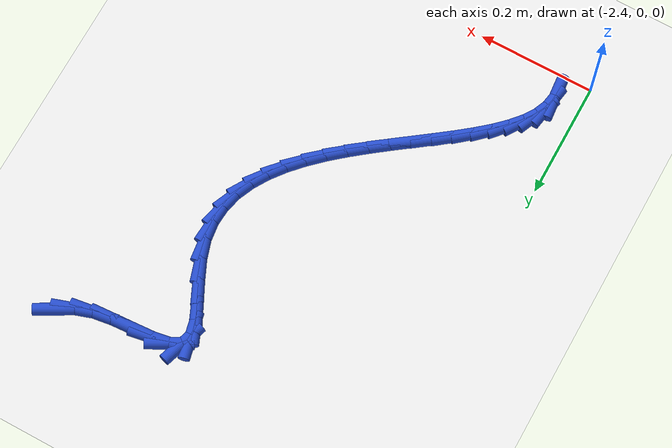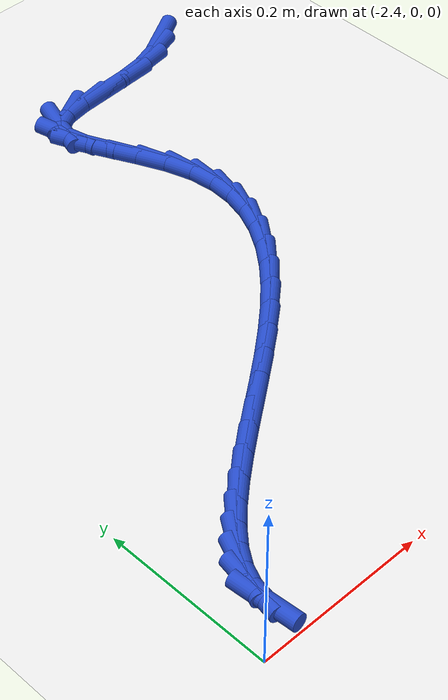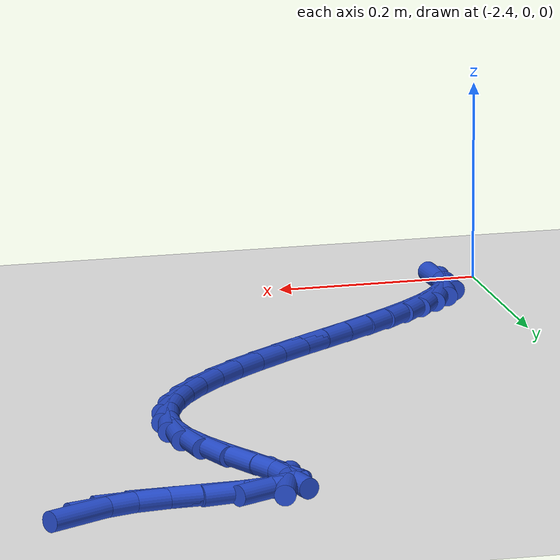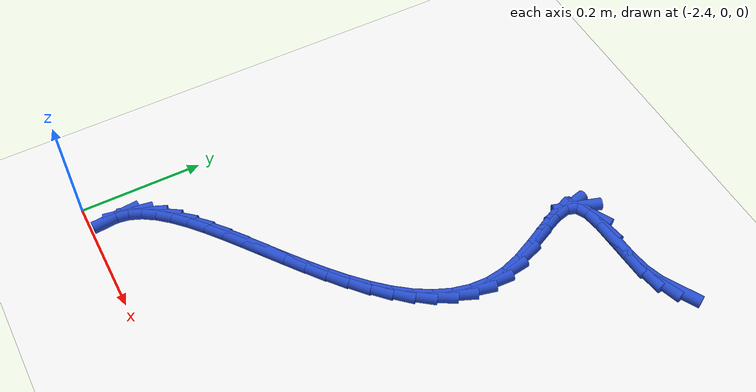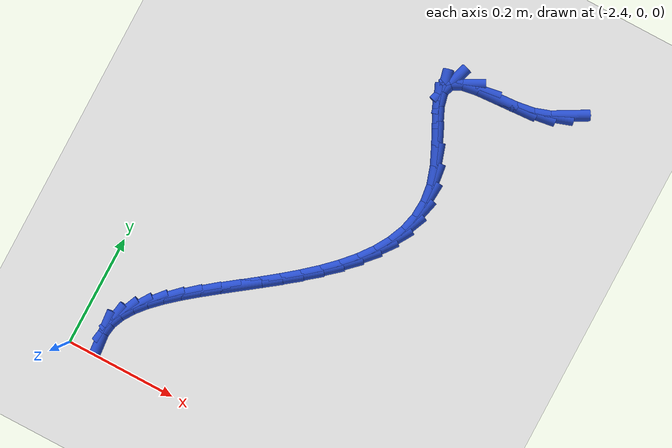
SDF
<sdf version="1.6">
 <world name="default">
  <model name="ground_plane">
   <static>1</static>
   <link name="link">
    <collision name="collision">
     <geometry><plane><normal>0 0 1</normal><size>100 100</size></plane></geometry>
     <surface><friction><ode><mu>100</mu><mu2>50</mu2></ode></friction></surface>
    </collision>
    <visual name="visual">
     <cast_shadows>0</cast_shadows>
     <geometry><plane><normal>0 0 1</normal><size>100 100</size></plane></geometry>
     <material>
      <script><uri>file://media/materials/scripts/gazebo.material</uri><name>Gazebo/WhiteGlow</name></script>
     </material>
    </visual>
   </link>
  </model>
  <model name="line">
   <link name="link_107">
    <pose>-1.8292656620702075 0.7436019253719346 0.01 0 1.57 0.5100071054248744</pose>
    <collision name="collision">
     <geometry><cylinder><radius>0.01</radius><length>0.08</length></cylinder></geometry>
    </collision>
    <visual name="visual">
     <material>
      <script><name>Gazebo/Blue</name><uri>file://media/materials/scripts/gazebo.material</uri></script>
     </material>
     <geometry><cylinder><radius>0.01</radius><length>0.08</length></cylinder></geometry>
    </visual>
   </link>
   <link name="link_108">
    <pose>-1.8538294652595877 0.729861718822115 0.01 0 1.57 0.3205590414442198</pose>
    <collision name="collision">
     <geometry><cylinder><radius>0.01</radius><length>0.08</length></cylinder></geometry>
    </collision>
    <visual name="visual">
     <material>
      <script><name>Gazebo/Blue</name><uri>file://media/materials/scripts/gazebo.material</uri></script>
     </material>
     <geometry><cylinder><radius>0.01</radius><length>0.08</length></cylinder></geometry>
    </visual>
   </link>
   <link name="link_109">
    <pose>-1.881981473962368 0.7205149716785866 0.01 0 1.57 0.14475911002500272</pose>
    <collision name="collision">
     <geometry><cylinder><radius>0.01</radius><length>0.08</length></cylinder></geometry>
    </collision>
    <visual name="visual">
     <material>
      <script><name>Gazebo/Blue</name><uri>file://media/materials/scripts/gazebo.material</uri></script>
     </material>
     <geometry><cylinder><radius>0.01</radius><length>0.08</length></cylinder></geometry>
    </visual>
   </link>
   <link name="link_110">
    <pose>-1.9150270019812357 0.715697633924294 0.01 0 1.57 0.06083944651270771</pose>
    <collision name="collision">
     <geometry><cylinder><radius>0.01</radius><length>0.08</length></cylinder></geometry>
    </collision>
    <visual name="visual">
     <material>
      <script><name>Gazebo/Blue</name><uri>file://media/materials/scripts/gazebo.material</uri></script>
     </material>
     <geometry><cylinder><radius>0.01</radius><length>0.08</length></cylinder></geometry>
    </visual>
   </link>
   <link name="link_111">
    <pose>-1.950398818764289 0.7135429730647855 0.01 0 1.57 0.062202054731328664</pose>
    <collision name="collision">
     <geometry><cylinder><radius>0.01</radius><length>0.08</length></cylinder></geometry>
    </collision>
    <visual name="visual">
     <material>
      <script><name>Gazebo/Blue</name><uri>file://media/materials/scripts/gazebo.material</uri></script>
     </material>
     <geometry><cylinder><radius>0.01</radius><length>0.08</length></cylinder></geometry>
    </visual>
   </link>
   <link name="link_112">
    <pose>-1.9840984306817493 0.7114440803224864 0.01 0 1.57 0.16445832035398328</pose>
    <collision name="collision">
     <geometry><cylinder><radius>0.01</radius><length>0.08</length></cylinder></geometry>
    </collision>
    <visual name="visual">
     <material>
      <script><name>Gazebo/Blue</name><uri>file://media/materials/scripts/gazebo.material</uri></script>
     </material>
     <geometry><cylinder><radius>0.01</radius><length>0.08</length></cylinder></geometry>
    </visual>
   </link>
   <link name="link_113">
    <pose>-2.0121250501774717 0.7067928606180736 0.01 0 1.57 0.4909520241806169</pose>
    <collision name="collision">
     <geometry><cylinder><radius>0.01</radius><length>0.08</length></cylinder></geometry>
    </collision>
    <visual name="visual">
     <material>
      <script><name>Gazebo/Blue</name><uri>file://media/materials/scripts/gazebo.material</uri></script>
     </material>
     <geometry><cylinder><radius>0.01</radius><length>0.08</length></cylinder></geometry>
    </visual>
   </link>
   <link name="link_114">
    <pose>-2.030477889695312 0.6969812188722249 0.01 0 1.57 1.2620965898340968</pose>
    <collision name="collision">
     <geometry><cylinder><radius>0.01</radius><length>0.08</length></cylinder></geometry>
    </collision>
    <visual name="visual">
     <material>
      <script><name>Gazebo/Blue</name><uri>file://media/materials/scripts/gazebo.material</uri></script>
     </material>
     <geometry><cylinder><radius>0.01</radius><length>0.08</length></cylinder></geometry>
    </visual>
   </link>
   <link name="link_115">
    <pose>-2.035944555427594 0.6798386619162557 0.01 0 1.57 -1.3424831832655497</pose>
    <collision name="collision">
     <geometry><cylinder><radius>0.01</radius><length>0.08</length></cylinder></geometry>
    </collision>
    <visual name="visual">
     <material>
      <script><name>Gazebo/Blue</name><uri>file://media/materials/scripts/gazebo.material</uri></script>
     </material>
     <geometry><cylinder><radius>0.01</radius><length>0.08</length></cylinder></geometry>
    </visual>
   </link>
   <link name="link_116">
    <pose>-2.030410997669643 0.6560245580877404 0.01 0 1.57 -1.1565417767600266</pose>
    <collision name="collision">
     <geometry><cylinder><radius>0.01</radius><length>0.08</length></cylinder></geometry>
    </collision>
    <visual name="visual">
     <material>
      <script><name>Gazebo/Blue</name><uri>file://media/materials/scripts/gazebo.material</uri></script>
     </material>
     <geometry><cylinder><radius>0.01</radius><length>0.08</length></cylinder></geometry>
    </visual>
   </link>
   <link name="link_117">
    <pose>-2.0177914264621495 0.627324071485021 0.01 0 1.57 -1.1100014169204726</pose>
    <collision name="collision">
     <geometry><cylinder><radius>0.01</radius><length>0.08</length></cylinder></geometry>
    </collision>
    <visual name="visual">
     <material>
      <script><name>Gazebo/Blue</name><uri>file://media/materials/scripts/gazebo.material</uri></script>
     </material>
     <geometry><cylinder><radius>0.01</radius><length>0.08</length></cylinder></geometry>
    </visual>
   </link>
   <link name="link_118">
    <pose>-2.0020052442559493 0.5955252482797775 0.01 0 1.57 -1.1445745760046189</pose>
    <collision name="collision">
     <geometry><cylinder><radius>0.01</radius><length>0.08</length></cylinder></geometry>
    </collision>
    <visual name="visual">
     <material>
      <script><name>Gazebo/Blue</name><uri>file://media/materials/scripts/gazebo.material</uri></script>
     </material>
     <geometry><cylinder><radius>0.01</radius><length>0.08</length></cylinder></geometry>
    </visual>
   </link>
   <link name="link_119">
    <pose>-1.986971853501878 0.5624161346436881 0.01 0 1.57 -1.2614623606668682</pose>
    <collision name="collision">
     <geometry><cylinder><radius>0.01</radius><length>0.08</length></cylinder></geometry>
    </collision>
    <visual name="visual">
     <material>
      <script><name>Gazebo/Blue</name><uri>file://media/materials/scripts/gazebo.material</uri></script>
     </material>
     <geometry><cylinder><radius>0.01</radius><length>0.08</length></cylinder></geometry>
    </visual>
   </link>
   <link name="link_120">
    <pose>-1.9765327674431576 0.5297524758326384 0.01 0 1.57 -1.441430635808675</pose>
    <collision name="collision">
     <geometry><cylinder><radius>0.01</radius><length>0.08</length></cylinder></geometry>
    </collision>
    <visual name="visual">
     <material>
      <script><name>Gazebo/Blue</name><uri>file://media/materials/scripts/gazebo.material</uri></script>
     </material>
     <geometry><cylinder><radius>0.01</radius><length>0.08</length></cylinder></geometry>
    </visual>
   </link>
   <link name="link_121">
    <pose>-1.9724580864799202 0.49843099524483264 0.01 0 1.57 1.5102338871734913</pose>
    <collision name="collision">
     <geometry><cylinder><radius>0.01</radius><length>0.08</length></cylinder></geometry>
    </collision>
    <visual name="visual">
     <material>
      <script><name>Gazebo/Blue</name><uri>file://media/materials/scripts/gazebo.material</uri></script>
     </material>
     <geometry><cylinder><radius>0.01</radius><length>0.08</length></cylinder></geometry>
    </visual>
   </link>
   <link name="link_122">
    <pose>-1.9742778831467882 0.4684194692051239 0.01 0 1.57 1.3278579241917365</pose>
    <collision name="collision">
     <geometry><cylinder><radius>0.01</radius><length>0.08</length></cylinder></geometry>
    </collision>
    <visual name="visual">
     <material>
      <script><name>Gazebo/Blue</name><uri>file://media/materials/scripts/gazebo.material</uri></script>
     </material>
     <geometry><cylinder><radius>0.01</radius><length>0.08</length></cylinder></geometry>
    </visual>
   </link>
   <link name="link_123">
    <pose>-1.9814105530108879 0.43963936122515934 0.01 0 1.57 1.1651800693542895</pose>
    <collision name="collision">
     <geometry><cylinder><radius>0.01</radius><length>0.08</length></cylinder></geometry>
    </collision>
    <visual name="visual">
     <material>
      <script><name>Gazebo/Blue</name><uri>file://media/materials/scripts/gazebo.material</uri></script>
     </material>
     <geometry><cylinder><radius>0.01</radius><length>0.08</length></cylinder></geometry>
    </visual>
   </link>
   <link name="link_124">
    <pose>-1.9932744916393463 0.41201213481658483 0.01 0 1.57 1.0281126765526098</pose>
    <collision name="collision">
     <geometry><cylinder><radius>0.01</radius><length>0.08</length></cylinder></geometry>
    </collision>
    <visual name="visual">
     <material>
      <script><name>Gazebo/Blue</name><uri>file://media/materials/scripts/gazebo.material</uri></script>
     </material>
     <geometry><cylinder><radius>0.01</radius><length>0.08</length></cylinder></geometry>
    </visual>
   </link>
   <link name="link_125">
    <pose>-2.0092880945992904 0.38545925349104637 0.01 0 1.57 0.9170116796918204</pose>
    <collision name="collision">
     <geometry><cylinder><radius>0.01</radius><length>0.08</length></cylinder></geometry>
    </collision>
    <visual name="visual">
     <material>
      <script><name>Gazebo/Blue</name><uri>file://media/materials/scripts/gazebo.material</uri></script>
     </material>
     <geometry><cylinder><radius>0.01</radius><length>0.08</length></cylinder></geometry>
    </visual>
   </link>
   <link name="link_126">
    <pose>-2.0288697574578465 0.3599021807601899 0.01 0 1.57 0.8292542363276011</pose>
    <collision name="collision">
     <geometry><cylinder><radius>0.01</radius><length>0.08</length></cylinder></geometry>
    </collision>
    <visual name="visual">
     <material>
      <script><name>Gazebo/Blue</name><uri>file://media/materials/scripts/gazebo.material</uri></script>
     </material>
     <geometry><cylinder><radius>0.01</radius><length>0.08</length></cylinder></geometry>
    </visual>
   </link>
   <link name="link_127">
    <pose>-2.0514378757821414 0.33526238013566234 0.01 0 1.57 0.7613755676104911</pose>
    <collision name="collision">
     <geometry><cylinder><radius>0.01</radius><length>0.08</length></cylinder></geometry>
    </collision>
    <visual name="visual">
     <material>
      <script><name>Gazebo/Blue</name><uri>file://media/materials/scripts/gazebo.material</uri></script>
     </material>
     <geometry><cylinder><radius>0.01</radius><length>0.08</length></cylinder></geometry>
    </visual>
   </link>
   <link name="link_128">
    <pose>-2.0764108451393026 0.31146131512910946 0.01 0 1.57 0.7101877692769326</pose>
    <collision name="collision">
     <geometry><cylinder><radius>0.01</radius><length>0.08</length></cylinder></geometry>
    </collision>
    <visual name="visual">
     <material>
      <script><name>Gazebo/Blue</name><uri>file://media/materials/scripts/gazebo.material</uri></script>
     </material>
     <geometry><cylinder><radius>0.01</radius><length>0.08</length></cylinder></geometry>
    </visual>
   </link>
   <link name="link_129">
    <pose>-2.1032070610964566 0.28842044925217747 0.01 0 1.57 0.6731931389493073</pose>
    <collision name="collision">
     <geometry><cylinder><radius>0.01</radius><length>0.08</length></cylinder></geometry>
    </collision>
    <visual name="visual">
     <material>
      <script><name>Gazebo/Blue</name><uri>file://media/materials/scripts/gazebo.material</uri></script>
     </material>
     <geometry><cylinder><radius>0.01</radius><length>0.08</length></cylinder></geometry>
    </visual>
   </link>
   <link name="link_130">
    <pose>-2.1312449192207303 0.2660612460165128 0.01 0 1.57 0.6486694606038699</pose>
    <collision name="collision">
     <geometry><cylinder><radius>0.01</radius><length>0.08</length></cylinder></geometry>
    </collision>
    <visual name="visual">
     <material>
      <script><name>Gazebo/Blue</name><uri>file://media/materials/scripts/gazebo.material</uri></script>
     </material>
     <geometry><cylinder><radius>0.01</radius><length>0.08</length></cylinder></geometry>
    </visual>
   </link>
   <link name="link_131">
    <pose>-2.159942815079251 0.24430516893376103 0.01 0 1.57 0.6356542925428289</pose>
    <collision name="collision">
     <geometry><cylinder><radius>0.01</radius><length>0.08</length></cylinder></geometry>
    </collision>
    <visual name="visual">
     <material>
      <script><name>Gazebo/Blue</name><uri>file://media/materials/scripts/gazebo.material</uri></script>
     </material>
     <geometry><cylinder><radius>0.01</radius><length>0.08</length></cylinder></geometry>
    </visual>
   </link>
   <link name="link_132">
    <pose>-2.1887191442391454 0.22307368151556917 0.01 0 1.57 0.633938862188853</pose>
    <collision name="collision">
     <geometry><cylinder><radius>0.01</radius><length>0.08</length></cylinder></geometry>
    </collision>
    <visual name="visual">
     <material>
      <script><name>Gazebo/Blue</name><uri>file://media/materials/scripts/gazebo.material</uri></script>
     </material>
     <geometry><cylinder><radius>0.01</radius><length>0.08</length></cylinder></geometry>
    </visual>
   </link>
   <link name="link_133">
    <pose>-2.216992302267539 0.202288247273583 0.01 0 1.57 0.6441276867195578</pose>
    <collision name="collision">
     <geometry><cylinder><radius>0.01</radius><length>0.08</length></cylinder></geometry>
    </collision>
    <visual name="visual">
     <material>
      <script><name>Gazebo/Blue</name><uri>file://media/materials/scripts/gazebo.material</uri></script>
     </material>
     <geometry><cylinder><radius>0.01</radius><length>0.08</length></cylinder></geometry>
    </visual>
   </link>
   <link name="link_134">
    <pose>-2.2441806847315604 0.1818703297194488 0.01 0 1.57 0.6678061930369559</pose>
    <collision name="collision">
     <geometry><cylinder><radius>0.01</radius><length>0.08</length></cylinder></geometry>
    </collision>
    <visual name="visual">
     <material>
      <script><name>Gazebo/Blue</name><uri>file://media/materials/scripts/gazebo.material</uri></script>
     </material>
     <geometry><cylinder><radius>0.01</radius><length>0.08</length></cylinder></geometry>
    </visual>
   </link>
   <link name="link_135">
    <pose>-2.269702687198337 0.1617413923648125 0.01 0 1.57 0.7078662488751475</pose>
    <collision name="collision">
     <geometry><cylinder><radius>0.01</radius><length>0.08</length></cylinder></geometry>
    </collision>
    <visual name="visual">
     <material>
      <script><name>Gazebo/Blue</name><uri>file://media/materials/scripts/gazebo.material</uri></script>
     </material>
     <geometry><cylinder><radius>0.01</radius><length>0.08</length></cylinder></geometry>
    </visual>
   </link>
   <link name="link_136">
    <pose>-2.292976705234992 0.14182289872132078 0.01 0 1.57 0.7690479887318303</pose>
    <collision name="collision">
     <geometry><cylinder><radius>0.01</radius><length>0.08</length></cylinder></geometry>
    </collision>
    <visual name="visual">
     <material>
      <script><name>Gazebo/Blue</name><uri>file://media/materials/scripts/gazebo.material</uri></script>
     </material>
     <geometry><cylinder><radius>0.01</radius><length>0.08</length></cylinder></geometry>
    </visual>
   </link>
   <link name="link_137">
    <pose>-2.3134211344086566 0.12203631230061965 0.01 0 1.57 0.8587025432795223</pose>
    <collision name="collision">
     <geometry><cylinder><radius>0.01</radius><length>0.08</length></cylinder></geometry>
    </collision>
    <visual name="visual">
     <material>
      <script><name>Gazebo/Blue</name><uri>file://media/materials/scripts/gazebo.material</uri></script>
     </material>
     <geometry><cylinder><radius>0.01</radius><length>0.08</length></cylinder></geometry>
    </visual>
   </link>
   <link name="link_138">
    <pose>-2.3304543702864557 0.10230309661435524 0.01 0 1.57 0.9874266196856468</pose>
    <collision name="collision">
     <geometry><cylinder><radius>0.01</radius><length>0.08</length></cylinder></geometry>
    </collision>
    <visual name="visual">
     <material>
      <script><name>Gazebo/Blue</name><uri>file://media/materials/scripts/gazebo.material</uri></script>
     </material>
     <geometry><cylinder><radius>0.01</radius><length>0.08</length></cylinder></geometry>
    </visual>
   </link>
   <link name="link_139">
    <pose>-2.3434948084355156 0.0825447151741738 0.01 0 1.57 1.1678749437705</pose>
    <collision name="collision">
     <geometry><cylinder><radius>0.01</radius><length>0.08</length></cylinder></geometry>
    </collision>
    <visual name="visual">
     <material>
      <script><name>Gazebo/Blue</name><uri>file://media/materials/scripts/gazebo.material</uri></script>
     </material>
     <geometry><cylinder><radius>0.01</radius><length>0.08</length></cylinder></geometry>
    </visual>
   </link>
   <link name="link_140">
    <pose>-2.3519608444229645 0.0626826314917212 0.01 0 1.57 1.4057050167744412</pose>
    <collision name="collision">
     <geometry><cylinder><radius>0.01</radius><length>0.08</length></cylinder></geometry>
    </collision>
    <visual name="visual">
     <material>
      <script><name>Gazebo/Blue</name><uri>file://media/materials/scripts/gazebo.material</uri></script>
     </material>
     <geometry><cylinder><radius>0.01</radius><length>0.08</length></cylinder></geometry>
    </visual>
   </link>
   <link name="link_141">
    <pose>-2.35530005476602 0.04264027920644302 0.01 0 1.57 -1.4819959592329939</pose>
    <collision name="collision">
     <geometry><cylinder><radius>0.01</radius><length>0.08</length></cylinder></geometry>
    </collision>
    <visual name="visual">
     <material>
      <script><name>Gazebo/Blue</name><uri>file://media/materials/scripts/gazebo.material</uri></script>
     </material>
     <geometry><cylinder><radius>0.01</radius><length>0.08</length></cylinder></geometry>
    </visual>
   </link>
  </model>
 </world>
</sdf>
